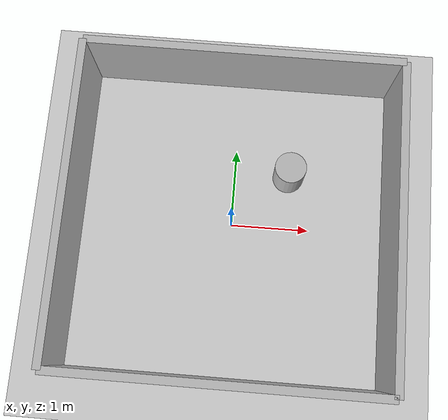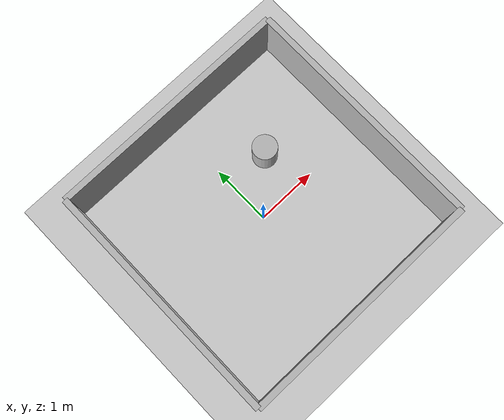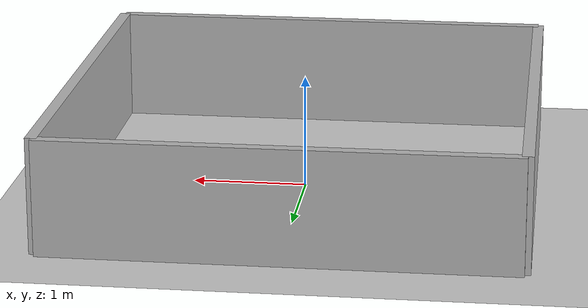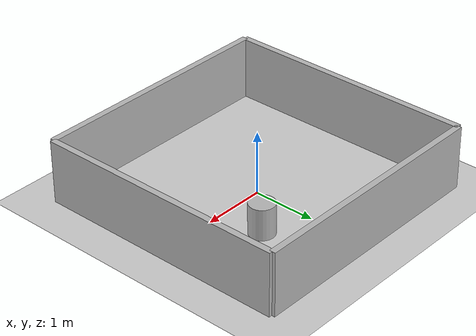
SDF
<?xml version="1.0"?>
<sdf version="1.4">
  <world name="default">
    <include>
      <uri>model://ground_plane</uri>
    </include>

    <include>
      <uri>model://sun</uri>
    </include>

    <model name="wall1">
      <static>true</static>
      <link name="link">
        <visual name="visual">
          <pose>2 0 0.5 0 0 0</pose>
          <geometry>
            <box>
              <size>0.1 4 1</size>
            </box>
          </geometry>
        </visual>
        <collision name="collision">
          <pose>2 0 0.5 0 0 0</pose>
          <geometry>
            <box>
              <size>0.1 4 1</size>
            </box>
          </geometry>
        </collision>
      </link>
    </model>

    <model name="wall2">
      <static>true</static>
      <link name="link">
        <visual name="visual">
          <pose>-2 0 0.5 0 0 0</pose>
          <geometry>
            <box>
              <size>0.1 4 1</size>
            </box>
          </geometry>
        </visual>
        <collision name="collision">
          <pose>-2 0 0.5 0 0 0</pose>
          <geometry>
            <box>
              <size>0.1 4 1</size>
            </box>
          </geometry>
        </collision>
      </link>
    </model>

    <model name="wall3">
      <static>true</static>
      <link name="link">
        <visual name="visual">
          <pose>0 2 0.5 0 0 0</pose>
          <geometry>
            <box>
              <size>4 0.1 1</size>
            </box>
          </geometry>
        </visual>
        <collision name="collision">
          <pose>0 2 0.5 0 0 0</pose>
          <geometry>
            <box>
              <size>4 0.1 1</size>
            </box>
          </geometry>
        </collision>
      </link>
    </model>

    <model name="wall4">
      <static>true</static>
      <link name="link">
        <visual name="visual">
          <pose>0 -2 0.5 0 0 0</pose>
          <geometry>
            <box>
              <size>4 0.1 1</size>
            </box>
          </geometry>
        </visual>
        <collision name="collision">
          <pose>0 -2 0.5 0 0 0</pose>
          <geometry>
            <box>
              <size>4 0.1 1</size>
            </box>
          </geometry>
        </collision>
      </link>
    </model>

    <model name="obstacle1">
      <static>true</static>
      <link name="link">
        <visual name="visual">
          <pose>0.7 0.7 0.25 0 0 0</pose>
          <geometry>
            <cylinder>
              <radius>0.2</radius>
              <length>0.5</length>
            </cylinder>
          </geometry>
        </visual>
        <collision name="collision">
          <pose>0.7 0.7 0.25 0 0 0</pose>
          <geometry>
            <cylinder>
              <radius>0.2</radius>
              <length>0.5</length>
            </cylinder>
          </geometry>
        </collision>
      </link>
    </model>

    <physics type="ode">
      <real_time_update_rate>1000.0</real_time_update_rate>
      <max_step_size>0.001</max_step_size>
      <real_time_factor>1</real_time_factor>
      <ode>
        <solver>
          <type>quick</type>
          <iters>150</iters>
          <precon_iters>0</precon_iters>
          <sor>1.400000</sor>
          <use_dynamic_moi_rescaling>1</use_dynamic_moi_rescaling>
        </solver>
        <constraints>
          <cfm>0.00001</cfm>
          <erp>0.2</erp>
          <contact_max_correcting_vel>2000.000000</contact_max_correcting_vel>
          <contact_surface_layer>0.01000</contact_surface_layer>
        </constraints>
      </ode>
    </physics>
  </world>
</sdf>
